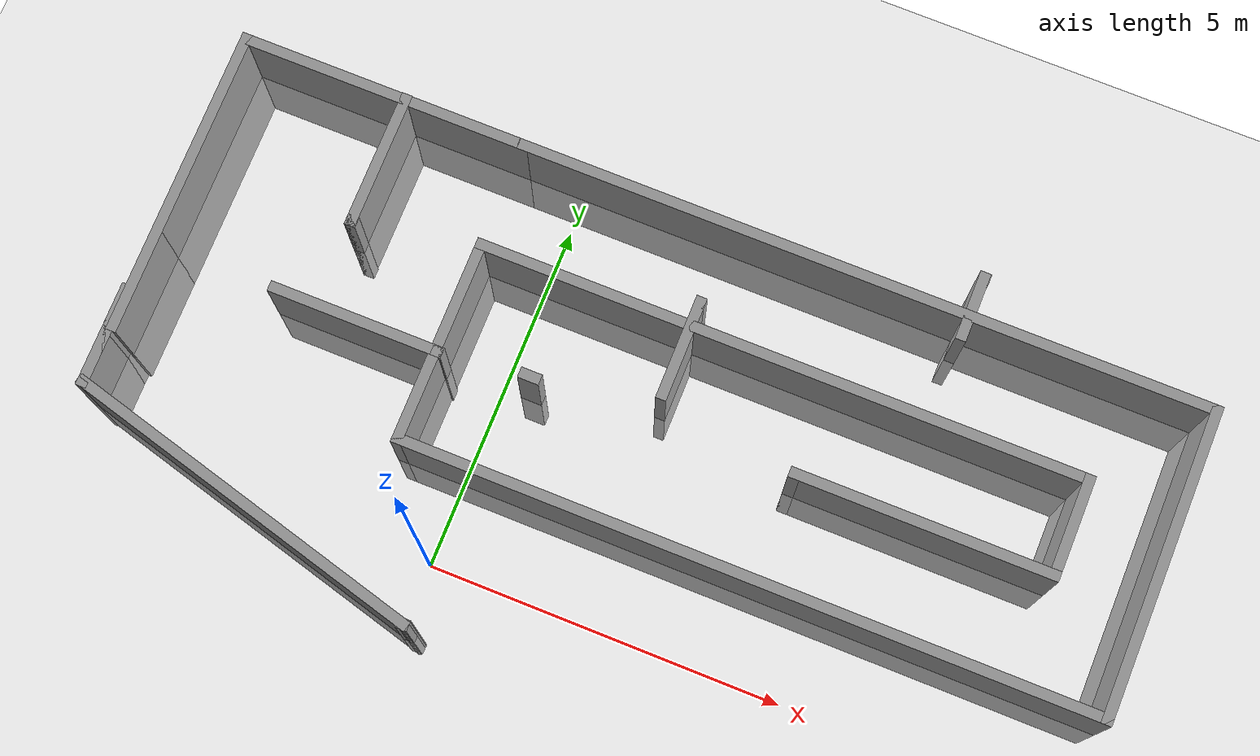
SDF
<sdf version="1.7">
 <world name="default">
  <light name="sun" type="directional">
   <pose>0 0 10 0 -0 0</pose>
   <diffuse>0.8 0.8 0.8 1</diffuse>
   <specular>0.2 0.2 0.2 1</specular>
   <attenuation>
    <range>1000</range>
    <constant>0.9</constant>
    <linear>0.01</linear>
    <quadratic>0.001</quadratic>
   </attenuation>
   <direction>-0.5 0.1 -0.9</direction>
   <spot><inner_angle>0</inner_angle><outer_angle>0</outer_angle><falloff>0</falloff></spot>
  </light>
  <model name="ground_plane">
   <static>1</static>
   <link name="link">
    <collision name="collision">
     <geometry><plane><normal>0 0 1</normal><size>100 100</size></plane></geometry>
     <surface><friction><ode><mu>100</mu><mu2>50</mu2></ode></friction></surface>
    </collision>
    <visual name="visual">
     <cast_shadows>0</cast_shadows>
     <geometry><plane><normal>0 0 1</normal><size>100 100</size></plane></geometry>
     <material>
      <script><uri>file://media/materials/scripts/gazebo.material</uri><name>Gazebo/Grey</name></script>
     </material>
    </visual>
   </link>
  </model>
  <gravity>0 0 -9.8</gravity>
  <magnetic_field>6e-06 2.3e-05 -4.2e-05</magnetic_field>
  <atmosphere type="adiabatic"/>
  <physics type="ode">
   <max_step_size>0.001</max_step_size>
   <real_time_factor>1</real_time_factor>
   <real_time_update_rate>1000</real_time_update_rate>
  </physics>
  <scene><ambient>0.4 0.4 0.4 1</ambient><background>0.7 0.7 0.7 1</background><shadows>1</shadows></scene>
  <audio><device>default</device></audio>
  <spherical_coordinates>
   <surface_model>EARTH_WGS84</surface_model>
   <latitude_deg>0</latitude_deg>
   <longitude_deg>0</longitude_deg>
   <elevation>0</elevation>
   <heading_deg>0</heading_deg>
  </spherical_coordinates>
  <model name="my_world">
   <pose>1.93741 2.59933 -1.30036 0 -0 0</pose>
   <link name="Wall_0">
    <collision name="Wall_0_Collision">
     <geometry><box><size>0.16 0.15 2.5</size></box></geometry>
     <pose>0 0 1.25 0 -0 0</pose>
    </collision>
    <visual name="Wall_0_Visual">
     <pose>0 0 1.25 0 -0 0</pose>
     <geometry><box><size>0.16 0.15 2.5</size></box></geometry>
     <material>
      <script><uri>file://media/materials/scripts/gazebo.material</uri><name>Gazebo/Grey</name></script>
      <ambient>1 1 1 1</ambient>
     </material>
     <meta><layer>0</layer></meta>
    </visual>
    <pose>-2.84607 3.01088 0 0 -0 0</pose>
   </link>
   <link name="Wall_1">
    <collision name="Wall_1_Collision">
     <geometry><box><size>10 0.15 2.5</size></box></geometry>
     <pose>0 0 1.25 0 -0 0</pose>
    </collision>
    <visual name="Wall_1_Visual">
     <pose>0 0 1.25 0 -0 0</pose>
     <geometry><box><size>10 0.15 2.5</size></box></geometry>
     <material>
      <script><uri>file://media/materials/scripts/gazebo.material</uri><name>Gazebo/Grey</name></script>
      <ambient>1 1 1 1</ambient>
     </material>
     <meta><layer>0</layer></meta>
    </visual>
    <pose>2.08393 3.01088 0 0 -0 0</pose>
   </link>
   <link name="Wall_10">
    <collision name="Wall_10_Collision">
     <geometry><box><size>0.16 0.15 2.5</size></box></geometry>
     <pose>0 0 1.25 0 -0 0</pose>
    </collision>
    <visual name="Wall_10_Visual">
     <pose>0 0 1.25 0 -0 0</pose>
     <geometry><box><size>0.16 0.15 2.5</size></box></geometry>
     <material>
      <script><uri>file://media/materials/scripts/gazebo.material</uri><name>Gazebo/Grey</name></script>
      <ambient>1 1 1 1</ambient>
     </material>
     <meta><layer>0</layer></meta>
    </visual>
    <pose>2.16393 0.160876 0 0 -0 0</pose>
   </link>
   <link name="Wall_12">
    <collision name="Wall_12_Collision">
     <geometry><box><size>0.3 0.15 2.5</size></box></geometry>
     <pose>0 0 1.25 0 -0 0</pose>
    </collision>
    <visual name="Wall_12_Visual">
     <pose>0 0 1.25 0 -0 0</pose>
     <geometry><box><size>0.3 0.15 2.5</size></box></geometry>
     <material>
      <script><uri>file://media/materials/scripts/gazebo.material</uri><name>Gazebo/Grey</name></script>
      <ambient>1 1 1 1</ambient>
     </material>
     <meta><layer>0</layer></meta>
    </visual>
    <pose>-1.55044 0.081505 0 0 -0 3.14159</pose>
   </link>
   <link name="Wall_14">
    <collision name="Wall_14_Collision">
     <geometry><box><size>1.5 0.15 2.5</size></box></geometry>
     <pose>0 0 1.25 0 -0 0</pose>
    </collision>
    <visual name="Wall_14_Visual">
     <pose>0 0 1.25 0 -0 0</pose>
     <geometry><box><size>1.5 0.15 2.5</size></box></geometry>
     <material>
      <script><uri>file://media/materials/scripts/gazebo.material</uri><name>Gazebo/Grey</name></script>
      <ambient>1 1 1 1</ambient>
     </material>
     <meta><layer>0</layer></meta>
    </visual>
    <pose>0.164464 1.17971 0 0 -0 1.5708</pose>
   </link>
   <link name="Wall_15">
    <collision name="Wall_15_Collision">
     <geometry><box><size>0.15 0.15 2.5</size></box></geometry>
     <pose>0 0 1.25 0 -0 0</pose>
    </collision>
    <visual name="Wall_15_Visual">
     <pose>0 0 1.25 0 -0 0</pose>
     <geometry><box><size>0.15 0.15 2.5</size></box></geometry>
     <material>
      <script><uri>file://media/materials/scripts/gazebo.material</uri><name>Gazebo/Grey</name></script>
      <ambient>1 1 1 1</ambient>
     </material>
     <meta><layer>0</layer></meta>
    </visual>
    <pose>0.164464 1.85471 0 0 -0 0</pose>
   </link>
   <link name="Wall_17">
    <collision name="Wall_17_Collision">
     <geometry><box><size>1 0.15 2.5</size></box></geometry>
     <pose>0 0 1.25 0 -0 0</pose>
    </collision>
    <visual name="Wall_17_Visual">
     <pose>0 0 1.25 0 -0 0</pose>
     <geometry><box><size>1 0.15 2.5</size></box></geometry>
     <material>
      <script><uri>file://media/materials/scripts/gazebo.material</uri><name>Gazebo/Grey</name></script>
      <ambient>1 1 1 1</ambient>
     </material>
     <meta><layer>0</layer></meta>
    </visual>
    <pose>3.55006 3.1515 0 0 -0 1.5708</pose>
   </link>
   <link name="Wall_18">
    <collision name="Wall_18_Collision">
     <geometry><box><size>0.16 0.15 2.5</size></box></geometry>
     <pose>0 0 1.25 0 -0 0</pose>
    </collision>
    <visual name="Wall_18_Visual">
     <pose>0 0 1.25 0 -0 0</pose>
     <geometry><box><size>0.16 0.15 2.5</size></box></geometry>
     <material>
      <script><uri>file://media/materials/scripts/gazebo.material</uri><name>Gazebo/Grey</name></script>
      <ambient>1 1 1 1</ambient>
     </material>
     <meta><layer>0</layer></meta>
    </visual>
    <pose>3.55506 3.57651 0 0 -0 0</pose>
   </link>
   <link name="Wall_2">
    <collision name="Wall_2_Collision">
     <geometry><box><size>4.5 0.15 2.5</size></box></geometry>
     <pose>0 0 1.25 0 -0 0</pose>
    </collision>
    <visual name="Wall_2_Visual">
     <pose>0 0 1.25 0 -0 0</pose>
     <geometry><box><size>4.5 0.15 2.5</size></box></geometry>
     <material>
      <script><uri>file://media/materials/scripts/gazebo.material</uri><name>Gazebo/Grey</name></script>
      <ambient>1 1 1 1</ambient>
     </material>
     <meta><layer>0</layer></meta>
    </visual>
    <pose>7.00893 0.835876 0 0 -0 -1.5708</pose>
   </link>
   <link name="Wall_20">
    <collision name="Wall_20_Collision">
     <geometry><box><size>4.25 0.15 2.5</size></box></geometry>
     <pose>0 0 1.25 0 -0 0</pose>
    </collision>
    <visual name="Wall_20_Visual">
     <pose>0 0 1.25 0 -0 0</pose>
     <geometry><box><size>4.25 0.15 2.5</size></box></geometry>
     <material>
      <script><uri>file://media/materials/scripts/gazebo.material</uri><name>Gazebo/Grey</name></script>
      <ambient>1 1 1 1</ambient>
     </material>
     <meta><layer>0</layer></meta>
    </visual>
    <pose>-4.89107 3.01088 0 0 -0 3.14159</pose>
   </link>
   <link name="Wall_21">
    <collision name="Wall_21_Collision">
     <geometry><box><size>4.5 0.15 2.5</size></box></geometry>
     <pose>0 0 1.25 0 -0 0</pose>
    </collision>
    <visual name="Wall_21_Visual">
     <pose>0 0 1.25 0 -0 0</pose>
     <geometry><box><size>4.5 0.15 2.5</size></box></geometry>
     <material>
      <script><uri>file://media/materials/scripts/gazebo.material</uri><name>Gazebo/Grey</name></script>
      <ambient>1 1 1 1</ambient>
     </material>
     <meta><layer>0</layer></meta>
    </visual>
    <pose>-6.94107 0.835876 0 0 -0 -1.5708</pose>
   </link>
   <link name="Wall_23">
    <collision name="Wall_23_Collision">
     <geometry><box><size>2 0.15 2.5</size></box></geometry>
     <pose>0 0 1.25 0 -0 0</pose>
    </collision>
    <visual name="Wall_23_Visual">
     <pose>0 0 1.25 0 -0 0</pose>
     <geometry><box><size>2 0.15 2.5</size></box></geometry>
     <material>
      <script><uri>file://media/materials/scripts/gazebo.material</uri><name>Gazebo/Grey</name></script>
      <ambient>1 1 1 1</ambient>
     </material>
     <meta><layer>0</layer></meta>
    </visual>
    <pose>-4.58331 2.09246 0 0 -0 -1.5708</pose>
   </link>
   <link name="Wall_24">
    <collision name="Wall_24_Collision">
     <geometry><box><size>0.16 0.15 2.5</size></box></geometry>
     <pose>0 0 1.25 0 -0 0</pose>
    </collision>
    <visual name="Wall_24_Visual">
     <pose>0 0 1.25 0 -0 0</pose>
     <geometry><box><size>0.16 0.15 2.5</size></box></geometry>
     <material>
      <script><uri>file://media/materials/scripts/gazebo.material</uri><name>Gazebo/Grey</name></script>
      <ambient>1 1 1 1</ambient>
     </material>
     <meta><layer>0</layer></meta>
    </visual>
    <pose>-4.57831 1.16745 0 0 -0 0</pose>
   </link>
   <link name="Wall_25">
    <collision name="Wall_25_Collision">
     <geometry><box><size>0.16 0.15 2.5</size></box></geometry>
     <pose>0 0 1.25 0 -0 0</pose>
    </collision>
    <visual name="Wall_25_Visual">
     <pose>0 0 1.25 0 -0 0</pose>
     <geometry><box><size>0.16 0.15 2.5</size></box></geometry>
     <material>
      <script><uri>file://media/materials/scripts/gazebo.material</uri><name>Gazebo/Grey</name></script>
      <ambient>1 1 1 1</ambient>
     </material>
     <meta><layer>0</layer></meta>
    </visual>
    <pose>-4.57831 1.16745 0 0 -0 3.14159</pose>
   </link>
   <link name="Wall_27">
    <collision name="Wall_27_Collision">
     <geometry><box><size>2.5 0.15 2.5</size></box></geometry>
     <pose>0 0 1.25 0 -0 0</pose>
    </collision>
    <visual name="Wall_27_Visual">
     <pose>0 0 1.25 0 -0 0</pose>
     <geometry><box><size>2.5 0.15 2.5</size></box></geometry>
     <material>
      <script><uri>file://media/materials/scripts/gazebo.material</uri><name>Gazebo/Grey</name></script>
      <ambient>1 1 1 1</ambient>
     </material>
     <meta><layer>0</layer></meta>
    </visual>
    <pose>-3.99021 -0.06397 0 0 -0 0</pose>
   </link>
   <link name="Wall_28">
    <collision name="Wall_28_Collision">
     <geometry><box><size>0.15 0.15 2.5</size></box></geometry>
     <pose>0 0 1.25 0 -0 0</pose>
    </collision>
    <visual name="Wall_28_Visual">
     <pose>0 0 1.25 0 -0 0</pose>
     <geometry><box><size>0.15 0.15 2.5</size></box></geometry>
     <material>
      <script><uri>file://media/materials/scripts/gazebo.material</uri><name>Gazebo/Grey</name></script>
      <ambient>1 1 1 1</ambient>
     </material>
     <meta><layer>0</layer></meta>
    </visual>
    <pose>-2.81521 -0.06397 0 0 -0 0</pose>
   </link>
   <link name="Wall_30">
    <collision name="Wall_30_Collision">
     <geometry><box><size>1.5 0.15 2.5</size></box></geometry>
     <pose>0 0 1.25 0 -0 0</pose>
    </collision>
    <visual name="Wall_30_Visual">
     <pose>0 0 1.25 0 -0 0</pose>
     <geometry><box><size>1.5 0.15 2.5</size></box></geometry>
     <material>
      <script><uri>file://media/materials/scripts/gazebo.material</uri><name>Gazebo/Grey</name></script>
      <ambient>1 1 1 1</ambient>
     </material>
     <meta><layer>0</layer></meta>
    </visual>
    <pose>-6.94107 -0.664124 0 0 -0 1.5708</pose>
   </link>
   <link name="Wall_32">
    <collision name="Wall_32_Collision">
     <geometry><box><size>1.5 0.15 2.5</size></box></geometry>
     <pose>0 0 1.25 0 -0 0</pose>
    </collision>
    <visual name="Wall_32_Visual">
     <pose>0 0 1.25 0 -0 0</pose>
     <geometry><box><size>1.5 0.15 2.5</size></box></geometry>
     <material>
      <script><uri>file://media/materials/scripts/gazebo.material</uri><name>Gazebo/Grey</name></script>
      <ambient>1 1 1 1</ambient>
     </material>
     <meta><layer>0</layer></meta>
    </visual>
    <pose>-6.99208 -1.49997 0 0 -0 1.5708</pose>
   </link>
   <link name="Wall_33">
    <collision name="Wall_33_Collision">
     <geometry><box><size>1.5 0.15 2.5</size></box></geometry>
     <pose>0 0 1.25 0 -0 0</pose>
    </collision>
    <visual name="Wall_33_Visual">
     <pose>0 0 1.25 0 -0 0</pose>
     <geometry><box><size>1.5 0.15 2.5</size></box></geometry>
     <material>
      <script><uri>file://media/materials/scripts/gazebo.material</uri><name>Gazebo/Grey</name></script>
      <ambient>1 1 1 1</ambient>
     </material>
     <meta><layer>0</layer></meta>
    </visual>
    <pose>-6.99208 -1.49997 0 0 -0 -1.5708</pose>
   </link>
   <link name="Wall_34">
    <collision name="Wall_34_Collision">
     <geometry><box><size>5.5 0.15 2.5</size></box></geometry>
     <pose>0 0 1.25 0 -0 0</pose>
    </collision>
    <visual name="Wall_34_Visual">
     <pose>0 0 1.25 0 -0 0</pose>
     <geometry><box><size>5.5 0.15 2.5</size></box></geometry>
     <material>
      <script><uri>file://media/materials/scripts/gazebo.material</uri><name>Gazebo/Grey</name></script>
      <ambient>1 1 1 1</ambient>
     </material>
     <meta><layer>0</layer></meta>
    </visual>
    <pose>-4.40822 -2.86731 0 0 -0 -0.261799</pose>
   </link>
   <link name="Wall_35">
    <collision name="Wall_35_Collision">
     <geometry><box><size>0.16 0.15 2.5</size></box></geometry>
     <pose>0 0 1.25 0 -0 0</pose>
    </collision>
    <visual name="Wall_35_Visual">
     <pose>0 0 1.25 0 -0 0</pose>
     <geometry><box><size>0.16 0.15 2.5</size></box></geometry>
     <material>
      <script><uri>file://media/materials/scripts/gazebo.material</uri><name>Gazebo/Grey</name></script>
      <ambient>1 1 1 1</ambient>
     </material>
     <meta><layer>0</layer></meta>
    </visual>
    <pose>-1.81937 -3.55965 0 0 -0 0</pose>
   </link>
   <link name="Wall_4">
    <collision name="Wall_4_Collision">
     <geometry><box><size>10 0.15 2.5</size></box></geometry>
     <pose>0 0 1.25 0 -0 0</pose>
    </collision>
    <visual name="Wall_4_Visual">
     <pose>0 0 1.25 0 -0 0</pose>
     <geometry><box><size>10 0.15 2.5</size></box></geometry>
     <material>
      <script><uri>file://media/materials/scripts/gazebo.material</uri><name>Gazebo/Grey</name></script>
      <ambient>1 1 1 1</ambient>
     </material>
     <meta><layer>0</layer></meta>
    </visual>
    <pose>2.08393 -1.33912 0 0 -0 3.14159</pose>
   </link>
   <link name="Wall_5">
    <collision name="Wall_5_Collision">
     <geometry><box><size>3 0.15 2.5</size></box></geometry>
     <pose>0 0 1.25 0 -0 0</pose>
    </collision>
    <visual name="Wall_5_Visual">
     <pose>0 0 1.25 0 -0 0</pose>
     <geometry><box><size>3 0.15 2.5</size></box></geometry>
     <material>
      <script><uri>file://media/materials/scripts/gazebo.material</uri><name>Gazebo/Grey</name></script>
      <ambient>1 1 1 1</ambient>
     </material>
     <meta><layer>0</layer></meta>
    </visual>
    <pose>-2.84107 0.085876 0 0 -0 1.5708</pose>
   </link>
   <link name="Wall_6">
    <collision name="Wall_6_Collision">
     <geometry><box><size>8.75 0.15 2.5</size></box></geometry>
     <pose>0 0 1.25 0 -0 0</pose>
    </collision>
    <visual name="Wall_6_Visual">
     <pose>0 0 1.25 0 -0 0</pose>
     <geometry><box><size>8.75 0.15 2.5</size></box></geometry>
     <material>
      <script><uri>file://media/materials/scripts/gazebo.material</uri><name>Gazebo/Grey</name></script>
      <ambient>1 1 1 1</ambient>
     </material>
     <meta><layer>0</layer></meta>
    </visual>
    <pose>1.45893 1.51088 0 0 -0 0</pose>
   </link>
   <link name="Wall_7">
    <collision name="Wall_7_Collision">
     <geometry><box><size>1.5 0.15 2.5</size></box></geometry>
     <pose>0 0 1.25 0 -0 0</pose>
    </collision>
    <visual name="Wall_7_Visual">
     <pose>0 0 1.25 0 -0 0</pose>
     <geometry><box><size>1.5 0.15 2.5</size></box></geometry>
     <material>
      <script><uri>file://media/materials/scripts/gazebo.material</uri><name>Gazebo/Grey</name></script>
      <ambient>1 1 1 1</ambient>
     </material>
     <meta><layer>0</layer></meta>
    </visual>
    <pose>5.75893 0.835876 0 0 -0 -1.5708</pose>
   </link>
   <link name="Wall_8">
    <collision name="Wall_8_Collision">
     <geometry><box><size>3.75 0.15 2.5</size></box></geometry>
     <pose>0 0 1.25 0 -0 0</pose>
    </collision>
    <visual name="Wall_8_Visual">
     <pose>0 0 1.25 0 -0 0</pose>
     <geometry><box><size>3.75 0.15 2.5</size></box></geometry>
     <material>
      <script><uri>file://media/materials/scripts/gazebo.material</uri><name>Gazebo/Grey</name></script>
      <ambient>1 1 1 1</ambient>
     </material>
     <meta><layer>0</layer></meta>
    </visual>
    <pose>3.95893 0.160876 0 0 -0 3.14159</pose>
   </link>
   <link name="Wall_9">
    <collision name="Wall_9_Collision">
     <geometry><box><size>0.15 0.15 2.5</size></box></geometry>
     <pose>0 0 1.25 0 -0 0</pose>
    </collision>
    <visual name="Wall_9_Visual">
     <pose>0 0 1.25 0 -0 0</pose>
     <geometry><box><size>0.15 0.15 2.5</size></box></geometry>
     <material>
      <script><uri>file://media/materials/scripts/gazebo.material</uri><name>Gazebo/Grey</name></script>
      <ambient>1 1 1 1</ambient>
     </material>
     <meta><layer>0</layer></meta>
    </visual>
    <pose>2.15893 0.160876 0 0 -0 0</pose>
   </link>
   <static>1</static>
  </model>
  <light name="user_directional_light_0" type="directional">
   <pose>2.19345 2.7816 1 0 -0 0</pose>
   <diffuse>0.5 0.5 0.5 1</diffuse>
   <specular>0.1 0.1 0.1 1</specular>
   <direction>0.1 0.1 -0.9</direction>
   <attenuation>
    <range>20</range>
    <constant>0.5</constant>
    <linear>0.01</linear>
    <quadratic>0.001</quadratic>
   </attenuation>
  </light>
  <light name="user_point_light_0" type="point">
   <pose>0.00602 0.042738 1 0 -0 0</pose>
   <diffuse>0.5 0.5 0.5 1</diffuse>
   <specular>0.1 0.1 0.1 1</specular>
   <attenuation>
    <range>20</range>
    <constant>0.5</constant>
    <linear>0.01</linear>
    <quadratic>0.001</quadratic>
   </attenuation>
   <cast_shadows>0</cast_shadows>
   <direction>0 0 -1</direction>
  </light>
  <light name="user_directional_light_1" type="directional">
   <pose>8.20427 3.3882 1 0 -0 0</pose>
   <diffuse>0.5 0.5 0.5 1</diffuse>
   <specular>0.1 0.1 0.1 1</specular>
   <direction>0.1 0.1 -0.9</direction>
   <attenuation>
    <range>20</range>
    <constant>0.5</constant>
    <linear>0.01</linear>
    <quadratic>0.001</quadratic>
   </attenuation>
  </light>
  <light name="user_directional_light_2" type="directional">
   <pose>-4.44235 2.83674 1 0 -0 0</pose>
   <diffuse>0.5 0.5 0.5 1</diffuse>
   <specular>0.1 0.1 0.1 1</specular>
   <direction>0.1 0.1 -0.9</direction>
   <attenuation>
    <range>20</range>
    <constant>0.5</constant>
    <linear>0.01</linear>
    <quadratic>0.001</quadratic>
   </attenuation>
  </light>
  <light name="user_directional_light_3" type="directional">
   <pose>2.24863 -3.56007 1 0 -0 0</pose>
   <diffuse>0.5 0.5 0.5 1</diffuse>
   <specular>0.1 0.1 0.1 1</specular>
   <direction>0.1 0.1 -0.9</direction>
   <attenuation>
    <range>20</range>
    <constant>0.5</constant>
    <linear>0.01</linear>
    <quadratic>0.001</quadratic>
   </attenuation>
  </light>
  <light name="user_directional_light_4" type="directional">
   <pose>2.43241 9.1233 1 0 -0 0</pose>
   <diffuse>0.5 0.5 0.5 1</diffuse>
   <specular>0.1 0.1 0.1 1</specular>
   <direction>0.1 0.1 -0.9</direction>
   <attenuation>
    <range>20</range>
    <constant>0.5</constant>
    <linear>0.01</linear>
    <quadratic>0.001</quadratic>
   </attenuation>
  </light>
 </world>
</sdf>
